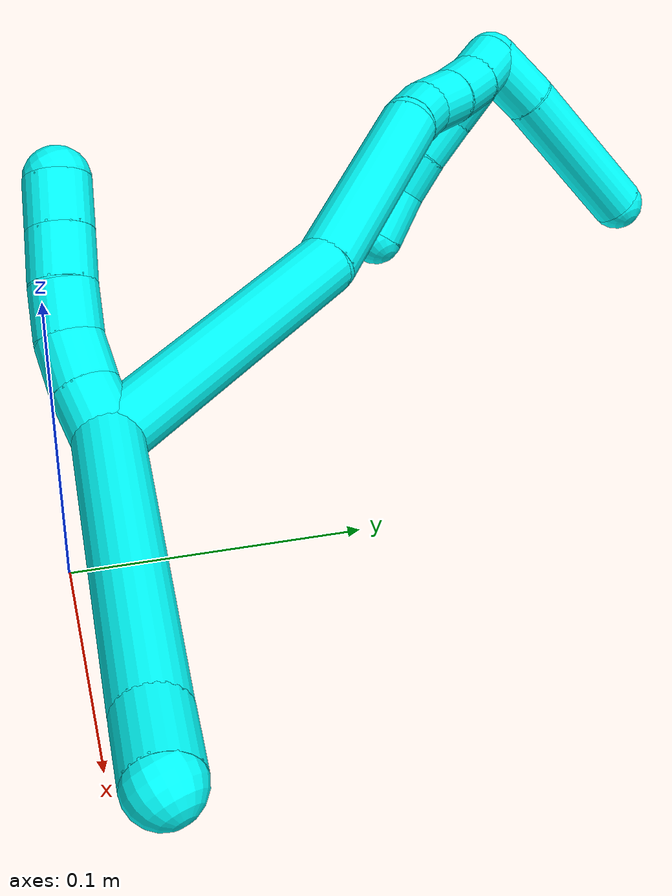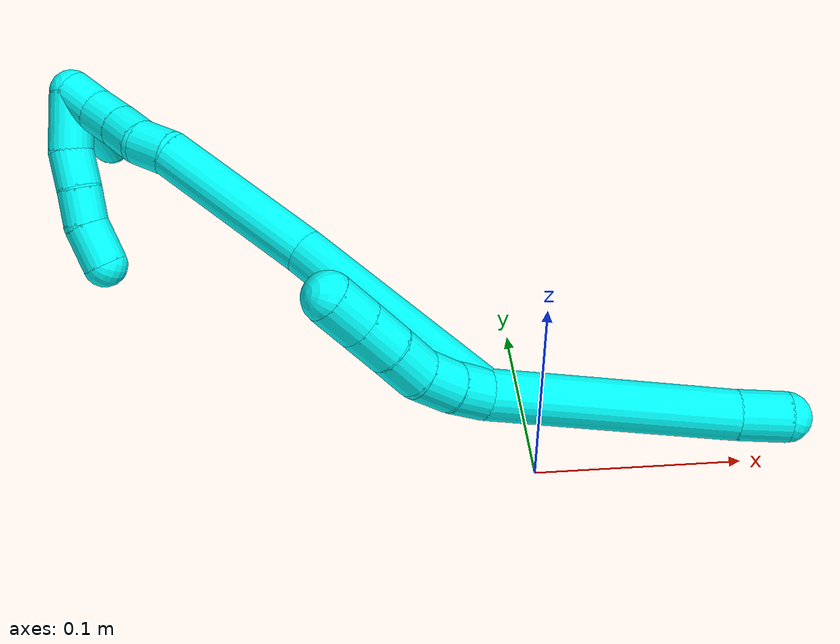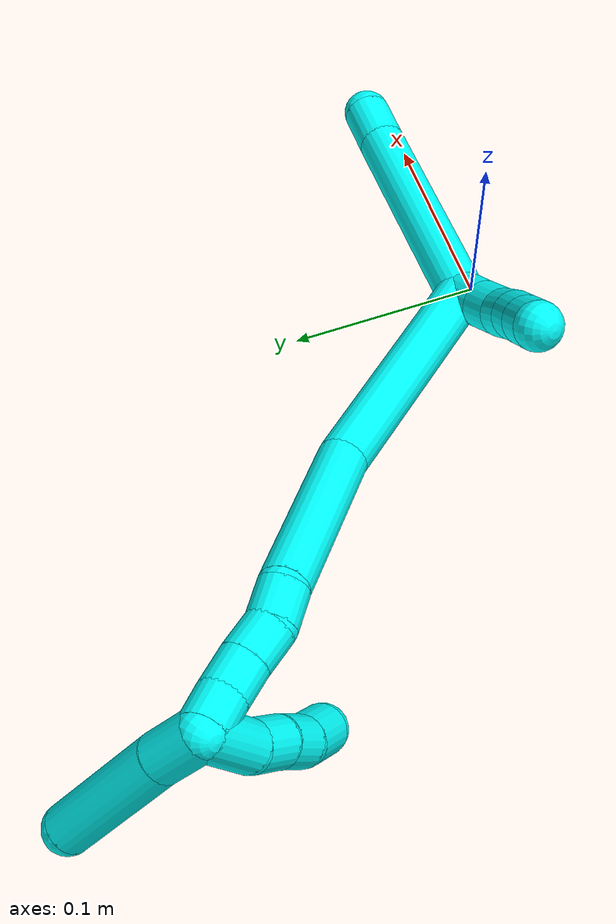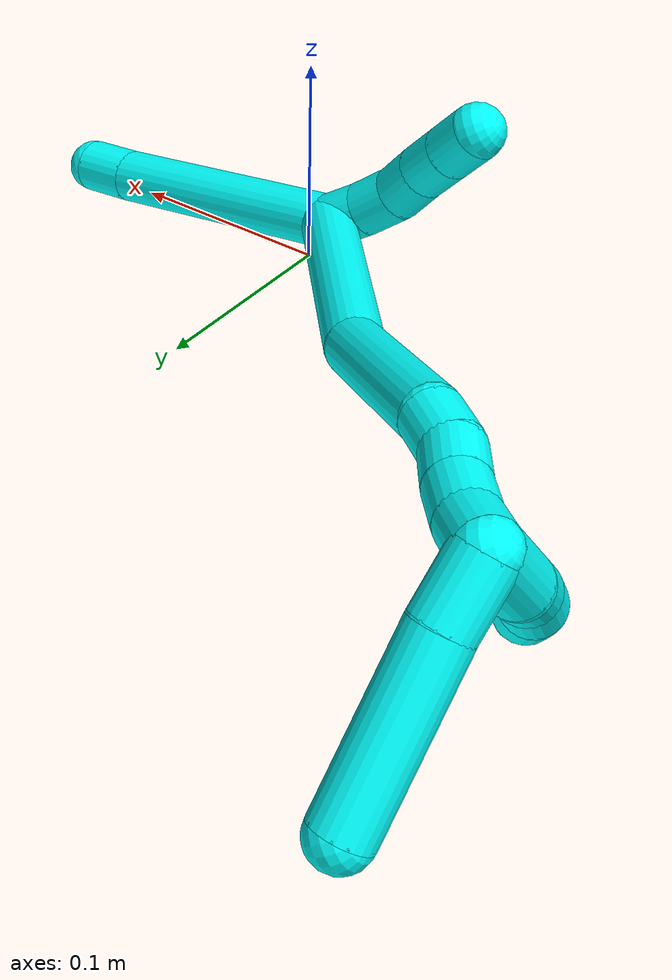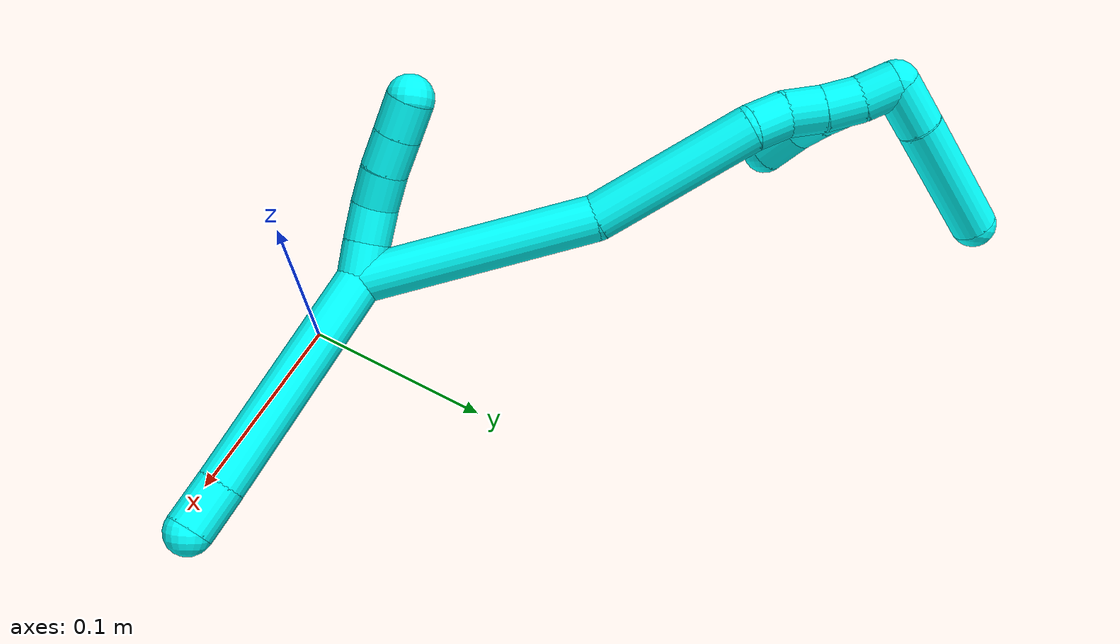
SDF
<sdf version="1.7">
 <world name="default">
  <model name="3">
   <static>0</static>
   <link name="3">
    <collision name="collision-cylinder-e_1_2_8">
     <pose>0.024641 0.022228 -0.052436 -2.74065 0.408346 -1.58961</pose>
     <geometry><cylinder><radius>0.0125</radius><length>0.124109</length></cylinder></geometry>
     <surface>
      <friction><ode><mu>1.16</mu><mu2>1.16</mu2><slip1>0</slip1><slip2>0</slip2></ode></friction>
      <contact><ode><kp>1e+06</kp><kd>1</kd><max_vel>0</max_vel><min_depth>0.001</min_depth></ode></contact>
     </surface>
    </collision>
    <visual name="visual-cylinder-e_1_2_8">
     <pose>0.024641 0.022228 -0.052436 -2.74065 0.408346 -1.58961</pose>
     <geometry><cylinder><radius>0.0125</radius><length>0.124109</length></cylinder></geometry>
     <material><ambient>0.003922 1 0.996078 1</ambient></material>
    </visual>
    <collision name="collision-cylinder-e_2_8_6">
     <pose>0.0544 0.049663 -0.115561 -2.6883 0.40642 -1.45844</pose>
     <geometry><cylinder><radius>0.0125</radius><length>0.025891</length></cylinder></geometry>
     <surface>
      <friction><ode><mu>1.16</mu><mu2>1.16</mu2><slip1>0</slip1><slip2>0</slip2></ode></friction>
      <contact><ode><kp>1e+06</kp><kd>1</kd><max_vel>0</max_vel><min_depth>0.001</min_depth></ode></contact>
     </surface>
    </collision>
    <visual name="visual-cylinder-e_2_8_6">
     <pose>0.0544 0.049663 -0.115561 -2.6883 0.40642 -1.45844</pose>
     <geometry><cylinder><radius>0.0125</radius><length>0.025891</length></cylinder></geometry>
     <material><ambient>0.003922 1 0.996078 1</ambient></material>
    </visual>
    <collision name="collision-cylinder-e_1_2_9">
     <pose>-0.000882 -0.00026 0.009958 0.026134 -0.088268 -0.001154</pose>
     <geometry><cylinder><radius>0.0125</radius><length>0.02</length></cylinder></geometry>
     <surface>
      <friction><ode><mu>1.16</mu><mu2>1.16</mu2><slip1>0</slip1><slip2>0</slip2></ode></friction>
      <contact><ode><kp>1e+06</kp><kd>1</kd><max_vel>0</max_vel><min_depth>0.001</min_depth></ode></contact>
     </surface>
    </collision>
    <visual name="visual-cylinder-e_1_2_9">
     <pose>-0.000882 -0.00026 0.009958 0.026134 -0.088268 -0.001154</pose>
     <geometry><cylinder><radius>0.0125</radius><length>0.02</length></cylinder></geometry>
     <material><ambient>0.003922 1 0.996078 1</ambient></material>
    </visual>
    <collision name="collision-cylinder-e_2_9_10">
     <pose>-0.003321 0.000389 0.029751 -0.092222 -0.156456 0.007234</pose>
     <geometry><cylinder><radius>0.0125</radius><length>0.02</length></cylinder></geometry>
     <surface>
      <friction><ode><mu>1.16</mu><mu2>1.16</mu2><slip1>0</slip1><slip2>0</slip2></ode></friction>
      <contact><ode><kp>1e+06</kp><kd>1</kd><max_vel>0</max_vel><min_depth>0.001</min_depth></ode></contact>
     </surface>
    </collision>
    <visual name="visual-cylinder-e_2_9_10">
     <pose>-0.003321 0.000389 0.029751 -0.092222 -0.156456 0.007234</pose>
     <geometry><cylinder><radius>0.0125</radius><length>0.02</length></cylinder></geometry>
     <material><ambient>0.003922 1 0.996078 1</ambient></material>
    </visual>
    <collision name="collision-cylinder-e_3_10_11">
     <pose>-0.007463 0.004549 0.048684 -0.343183 -0.261288 0.045532</pose>
     <geometry><cylinder><radius>0.0125</radius><length>0.02</length></cylinder></geometry>
     <surface>
      <friction><ode><mu>1.16</mu><mu2>1.16</mu2><slip1>0</slip1><slip2>0</slip2></ode></friction>
      <contact><ode><kp>1e+06</kp><kd>1</kd><max_vel>0</max_vel><min_depth>0.001</min_depth></ode></contact>
     </surface>
    </collision>
    <visual name="visual-cylinder-e_3_10_11">
     <pose>-0.007463 0.004549 0.048684 -0.343183 -0.261288 0.045532</pose>
     <geometry><cylinder><radius>0.0125</radius><length>0.02</length></cylinder></geometry>
     <material><ambient>0.003922 1 0.996078 1</ambient></material>
    </visual>
    <collision name="collision-cylinder-e_4_11_12">
     <pose>-0.013344 0.01072 0.066759 -0.31445 -0.336052 0.05377</pose>
     <geometry><cylinder><radius>0.0125</radius><length>0.02</length></cylinder></geometry>
     <surface>
      <friction><ode><mu>1.16</mu><mu2>1.16</mu2><slip1>0</slip1><slip2>0</slip2></ode></friction>
      <contact><ode><kp>1e+06</kp><kd>1</kd><max_vel>0</max_vel><min_depth>0.001</min_depth></ode></contact>
     </surface>
    </collision>
    <visual name="visual-cylinder-e_4_11_12">
     <pose>-0.013344 0.01072 0.066759 -0.31445 -0.336052 0.05377</pose>
     <geometry><cylinder><radius>0.0125</radius><length>0.02</length></cylinder></geometry>
     <material><ambient>0.003922 1 0.996078 1</ambient></material>
    </visual>
    <collision name="collision-cylinder-e_5_12_5">
     <pose>-0.019885 0.016545 0.084739 -0.312133 -0.33033 0.052442</pose>
     <geometry><cylinder><radius>0.0125</radius><length>0.02</length></cylinder></geometry>
     <surface>
      <friction><ode><mu>1.16</mu><mu2>1.16</mu2><slip1>0</slip1><slip2>0</slip2></ode></friction>
      <contact><ode><kp>1e+06</kp><kd>1</kd><max_vel>0</max_vel><min_depth>0.001</min_depth></ode></contact>
     </surface>
    </collision>
    <visual name="visual-cylinder-e_5_12_5">
     <pose>-0.019885 0.016545 0.084739 -0.312133 -0.33033 0.052442</pose>
     <geometry><cylinder><radius>0.0125</radius><length>0.02</length></cylinder></geometry>
     <material><ambient>0.003922 1 0.996078 1</ambient></material>
    </visual>
    <collision name="collision-cylinder-e_1_2_13">
     <pose>-0.059723 -0.003879 0.02138 0.179481 -1.22185 -0.125862</pose>
     <geometry><cylinder><radius>0.0125</radius><length>0.127107</length></cylinder></geometry>
     <surface>
      <friction><ode><mu>1.16</mu><mu2>1.16</mu2><slip1>0</slip1><slip2>0</slip2></ode></friction>
      <contact><ode><kp>1e+06</kp><kd>1</kd><max_vel>0</max_vel><min_depth>0.001</min_depth></ode></contact>
     </surface>
    </collision>
    <visual name="visual-cylinder-e_1_2_13">
     <pose>-0.059723 -0.003879 0.02138 0.179481 -1.22185 -0.125862</pose>
     <geometry><cylinder><radius>0.0125</radius><length>0.127107</length></cylinder></geometry>
     <material><ambient>0.003922 1 0.996078 1</ambient></material>
    </visual>
    <collision name="collision-cylinder-e_2_13_14">
     <pose>-0.157323 -0.007483 0.069036 -0.010458 -0.964272 0.005473</pose>
     <geometry><cylinder><radius>0.0125</radius><length>0.092198</length></cylinder></geometry>
     <surface>
      <friction><ode><mu>1.16</mu><mu2>1.16</mu2><slip1>0</slip1><slip2>0</slip2></ode></friction>
      <contact><ode><kp>1e+06</kp><kd>1</kd><max_vel>0</max_vel><min_depth>0.001</min_depth></ode></contact>
     </surface>
    </collision>
    <visual name="visual-cylinder-e_2_13_14">
     <pose>-0.157323 -0.007483 0.069036 -0.010458 -0.964272 0.005473</pose>
     <geometry><cylinder><radius>0.0125</radius><length>0.092198</length></cylinder></geometry>
     <material><ambient>0.003922 1 0.996078 1</ambient></material>
    </visual>
    <collision name="collision-cylinder-e_3_14_15">
     <pose>-0.203715 -0.009966 0.099929 0.538332 -1.00757 -0.301811</pose>
     <geometry><cylinder><radius>0.0125</radius><length>0.020143</length></cylinder></geometry>
     <surface>
      <friction><ode><mu>1.16</mu><mu2>1.16</mu2><slip1>0</slip1><slip2>0</slip2></ode></friction>
      <contact><ode><kp>1e+06</kp><kd>1</kd><max_vel>0</max_vel><min_depth>0.001</min_depth></ode></contact>
     </surface>
    </collision>
    <visual name="visual-cylinder-e_3_14_15">
     <pose>-0.203715 -0.009966 0.099929 0.538332 -1.00757 -0.301811</pose>
     <geometry><cylinder><radius>0.0125</radius><length>0.020143</length></cylinder></geometry>
     <material><ambient>0.003922 1 0.996078 1</ambient></material>
    </visual>
    <collision name="collision-cylinder-e_4_15_16">
     <pose>-0.221894 -0.01401 0.106808 0.517296 -1.30766 -0.400046</pose>
     <geometry><cylinder><radius>0.0125</radius><length>0.020013</length></cylinder></geometry>
     <surface>
      <friction><ode><mu>1.16</mu><mu2>1.16</mu2><slip1>0</slip1><slip2>0</slip2></ode></friction>
      <contact><ode><kp>1e+06</kp><kd>1</kd><max_vel>0</max_vel><min_depth>0.001</min_depth></ode></contact>
     </surface>
    </collision>
    <visual name="visual-cylinder-e_4_15_16">
     <pose>-0.221894 -0.01401 0.106808 0.517296 -1.30766 -0.400046</pose>
     <geometry><cylinder><radius>0.0125</radius><length>0.020013</length></cylinder></geometry>
     <material><ambient>0.003922 1 0.996078 1</ambient></material>
    </visual>
    <collision name="collision-cylinder-e_5_16_17">
     <pose>-0.24099 -0.016512 0.112466 0.343705 -1.20563 -0.237794</pose>
     <geometry><cylinder><radius>0.0125</radius><length>0.020201</length></cylinder></geometry>
     <surface>
      <friction><ode><mu>1.16</mu><mu2>1.16</mu2><slip1>0</slip1><slip2>0</slip2></ode></friction>
      <contact><ode><kp>1e+06</kp><kd>1</kd><max_vel>0</max_vel><min_depth>0.001</min_depth></ode></contact>
     </surface>
    </collision>
    <visual name="visual-cylinder-e_5_16_17">
     <pose>-0.24099 -0.016512 0.112466 0.343705 -1.20563 -0.237794</pose>
     <geometry><cylinder><radius>0.0125</radius><length>0.020201</length></cylinder></geometry>
     <material><ambient>0.003922 1 0.996078 1</ambient></material>
    </visual>
    <collision name="collision-cylinder-e_6_17_1">
     <pose>-0.259361 -0.017985 0.120709 0.05289 -1.07325 -0.031467</pose>
     <geometry><cylinder><radius>0.0125</radius><length>0.020338</length></cylinder></geometry>
     <surface>
      <friction><ode><mu>1.16</mu><mu2>1.16</mu2><slip1>0</slip1><slip2>0</slip2></ode></friction>
      <contact><ode><kp>1e+06</kp><kd>1</kd><max_vel>0</max_vel><min_depth>0.001</min_depth></ode></contact>
     </surface>
    </collision>
    <visual name="visual-cylinder-e_6_17_1">
     <pose>-0.259361 -0.017985 0.120709 0.05289 -1.07325 -0.031467</pose>
     <geometry><cylinder><radius>0.0125</radius><length>0.020338</length></cylinder></geometry>
     <material><ambient>0.003922 1 0.996078 1</ambient></material>
    </visual>
    <collision name="collision-cylinder-e_1_1_18">
     <pose>-0.276337 -0.024198 0.115844 2.59135 -0.614567 -1.68759</pose>
     <geometry><cylinder><radius>0.0125</radius><length>0.027888</length></cylinder></geometry>
     <surface>
      <friction><ode><mu>1.16</mu><mu2>1.16</mu2><slip1>0</slip1><slip2>0</slip2></ode></friction>
      <contact><ode><kp>1e+06</kp><kd>1</kd><max_vel>0</max_vel><min_depth>0.001</min_depth></ode></contact>
     </surface>
    </collision>
    <visual name="visual-cylinder-e_1_1_18">
     <pose>-0.276337 -0.024198 0.115844 2.59135 -0.614567 -1.68759</pose>
     <geometry><cylinder><radius>0.0125</radius><length>0.027888</length></cylinder></geometry>
     <material><ambient>0.003922 1 0.996078 1</ambient></material>
    </visual>
    <collision name="collision-cylinder-e_2_18_4">
     <pose>-0.304652 -0.048101 0.082323 2.49571 -0.597175 -1.48721</pose>
     <geometry><cylinder><radius>0.0125</radius><length>0.072112</length></cylinder></geometry>
     <surface>
      <friction><ode><mu>1.16</mu><mu2>1.16</mu2><slip1>0</slip1><slip2>0</slip2></ode></friction>
      <contact><ode><kp>1e+06</kp><kd>1</kd><max_vel>0</max_vel><min_depth>0.001</min_depth></ode></contact>
     </surface>
    </collision>
    <visual name="visual-cylinder-e_2_18_4">
     <pose>-0.304652 -0.048101 0.082323 2.49571 -0.597175 -1.48721</pose>
     <geometry><cylinder><radius>0.0125</radius><length>0.072112</length></cylinder></geometry>
     <material><ambient>0.003922 1 0.996078 1</ambient></material>
    </visual>
    <collision name="collision-cylinder-e_1_1_19">
     <pose>-0.25956 -0.03199 0.12232 1.80191 0.553942 0.689232</pose>
     <geometry><cylinder><radius>0.0125</radius><length>0.033215</length></cylinder></geometry>
     <surface>
      <friction><ode><mu>1.16</mu><mu2>1.16</mu2><slip1>0</slip1><slip2>0</slip2></ode></friction>
      <contact><ode><kp>1e+06</kp><kd>1</kd><max_vel>0</max_vel><min_depth>0.001</min_depth></ode></contact>
     </surface>
    </collision>
    <visual name="visual-cylinder-e_1_1_19">
     <pose>-0.25956 -0.03199 0.12232 1.80191 0.553942 0.689232</pose>
     <geometry><cylinder><radius>0.0125</radius><length>0.033215</length></cylinder></geometry>
     <material><ambient>0.003922 1 0.996078 1</ambient></material>
    </visual>
    <collision name="collision-cylinder-e_2_19_20">
     <pose>-0.243347 -0.052751 0.11556 2.03651 0.761187 1.15117</pose>
     <geometry><cylinder><radius>0.0125</radius><length>0.021681</length></cylinder></geometry>
     <surface>
      <friction><ode><mu>1.16</mu><mu2>1.16</mu2><slip1>0</slip1><slip2>0</slip2></ode></friction>
      <contact><ode><kp>1e+06</kp><kd>1</kd><max_vel>0</max_vel><min_depth>0.001</min_depth></ode></contact>
     </surface>
    </collision>
    <visual name="visual-cylinder-e_2_19_20">
     <pose>-0.243347 -0.052751 0.11556 2.03651 0.761187 1.15117</pose>
     <geometry><cylinder><radius>0.0125</radius><length>0.021681</length></cylinder></geometry>
     <material><ambient>0.003922 1 0.996078 1</ambient></material>
    </visual>
    <collision name="collision-cylinder-e_3_20_21">
     <pose>-0.229823 -0.067044 0.108476 2.02557 0.640985 0.977513</pose>
     <geometry><cylinder><radius>0.0125</radius><length>0.020223</length></cylinder></geometry>
     <surface>
      <friction><ode><mu>1.16</mu><mu2>1.16</mu2><slip1>0</slip1><slip2>0</slip2></ode></friction>
      <contact><ode><kp>1e+06</kp><kd>1</kd><max_vel>0</max_vel><min_depth>0.001</min_depth></ode></contact>
     </surface>
    </collision>
    <visual name="visual-cylinder-e_3_20_21">
     <pose>-0.229823 -0.067044 0.108476 2.02557 0.640985 0.977513</pose>
     <geometry><cylinder><radius>0.0125</radius><length>0.020223</length></cylinder></geometry>
     <material><ambient>0.003922 1 0.996078 1</ambient></material>
    </visual>
    <collision name="collision-cylinder-e_4_21_3">
     <pose>-0.215652 -0.081111 0.09838 2.3374 0.71165 1.43642</pose>
     <geometry><cylinder><radius>0.0125</radius><length>0.024881</length></cylinder></geometry>
     <surface>
      <friction><ode><mu>1.16</mu><mu2>1.16</mu2><slip1>0</slip1><slip2>0</slip2></ode></friction>
      <contact><ode><kp>1e+06</kp><kd>1</kd><max_vel>0</max_vel><min_depth>0.001</min_depth></ode></contact>
     </surface>
    </collision>
    <visual name="visual-cylinder-e_4_21_3">
     <pose>-0.215652 -0.081111 0.09838 2.3374 0.71165 1.43642</pose>
     <geometry><cylinder><radius>0.0125</radius><length>0.024881</length></cylinder></geometry>
     <material><ambient>0.003922 1 0.996078 1</ambient></material>
    </visual>
    <collision name="collision-sphere-3">
     <pose>-0.207527 -0.087896 0.091845 0 -0 0</pose>
     <geometry><sphere><radius>0.0125</radius></sphere></geometry>
     <surface>
      <friction><ode><mu>1.16</mu><mu2>1.16</mu2><slip1>0</slip1><slip2>0</slip2></ode></friction>
      <contact><ode><kp>1e+06</kp><kd>1</kd><max_vel>0</max_vel><min_depth>0.001</min_depth></ode></contact>
     </surface>
    </collision>
    <visual name="visual-sphere-3">
     <pose>-0.207527 -0.087896 0.091845 0 -0 0</pose>
     <geometry><sphere><radius>0.0125</radius></sphere></geometry>
     <material><ambient>0.003922 1 0.996078 1</ambient></material>
    </visual>
    <collision name="collision-sphere-21">
     <pose>-0.223776 -0.074325 0.104916 0 -0 0</pose>
     <geometry><sphere><radius>0.0125</radius></sphere></geometry>
     <surface>
      <friction><ode><mu>1.16</mu><mu2>1.16</mu2><slip1>0</slip1><slip2>0</slip2></ode></friction>
      <contact><ode><kp>1e+06</kp><kd>1</kd><max_vel>0</max_vel><min_depth>0.001</min_depth></ode></contact>
     </surface>
    </collision>
    <visual name="visual-sphere-21">
     <pose>-0.223776 -0.074325 0.104916 0 -0 0</pose>
     <geometry><sphere><radius>0.0125</radius></sphere></geometry>
     <material><ambient>0.003922 1 0.996078 1</ambient></material>
    </visual>
    <collision name="collision-sphere-20">
     <pose>-0.235869 -0.059764 0.112035 0 -0 0</pose>
     <geometry><sphere><radius>0.0125</radius></sphere></geometry>
     <surface>
      <friction><ode><mu>1.16</mu><mu2>1.16</mu2><slip1>0</slip1><slip2>0</slip2></ode></friction>
      <contact><ode><kp>1e+06</kp><kd>1</kd><max_vel>0</max_vel><min_depth>0.001</min_depth></ode></contact>
     </surface>
    </collision>
    <visual name="visual-sphere-20">
     <pose>-0.235869 -0.059764 0.112035 0 -0 0</pose>
     <geometry><sphere><radius>0.0125</radius></sphere></geometry>
     <material><ambient>0.003922 1 0.996078 1</ambient></material>
    </visual>
    <collision name="collision-sphere-19">
     <pose>-0.250824 -0.045738 0.119084 0 -0 0</pose>
     <geometry><sphere><radius>0.0125</radius></sphere></geometry>
     <surface>
      <friction><ode><mu>1.16</mu><mu2>1.16</mu2><slip1>0</slip1><slip2>0</slip2></ode></friction>
      <contact><ode><kp>1e+06</kp><kd>1</kd><max_vel>0</max_vel><min_depth>0.001</min_depth></ode></contact>
     </surface>
    </collision>
    <visual name="visual-sphere-19">
     <pose>-0.250824 -0.045738 0.119084 0 -0 0</pose>
     <geometry><sphere><radius>0.0125</radius></sphere></geometry>
     <material><ambient>0.003922 1 0.996078 1</ambient></material>
    </visual>
    <collision name="collision-sphere-11">
     <pose>-0.010046 0.0078 0.057782 0 -0 0</pose>
     <geometry><sphere><radius>0.0125</radius></sphere></geometry>
     <surface>
      <friction><ode><mu>1.16</mu><mu2>1.16</mu2><slip1>0</slip1><slip2>0</slip2></ode></friction>
      <contact><ode><kp>1e+06</kp><kd>1</kd><max_vel>0</max_vel><min_depth>0.001</min_depth></ode></contact>
     </surface>
    </collision>
    <visual name="visual-sphere-11">
     <pose>-0.010046 0.0078 0.057782 0 -0 0</pose>
     <geometry><sphere><radius>0.0125</radius></sphere></geometry>
     <material><ambient>0.003922 1 0.996078 1</ambient></material>
    </visual>
    <collision name="collision-sphere-10">
     <pose>-0.004879 0.001299 0.039587 0 -0 0</pose>
     <geometry><sphere><radius>0.0125</radius></sphere></geometry>
     <surface>
      <friction><ode><mu>1.16</mu><mu2>1.16</mu2><slip1>0</slip1><slip2>0</slip2></ode></friction>
      <contact><ode><kp>1e+06</kp><kd>1</kd><max_vel>0</max_vel><min_depth>0.001</min_depth></ode></contact>
     </surface>
    </collision>
    <visual name="visual-sphere-10">
     <pose>-0.004879 0.001299 0.039587 0 -0 0</pose>
     <geometry><sphere><radius>0.0125</radius></sphere></geometry>
     <material><ambient>0.003922 1 0.996078 1</ambient></material>
    </visual>
    <collision name="collision-sphere-6">
     <pose>0.059518 0.05487 -0.126252 0 -0 0</pose>
     <geometry><sphere><radius>0.0125</radius></sphere></geometry>
     <surface>
      <friction><ode><mu>1.16</mu><mu2>1.16</mu2><slip1>0</slip1><slip2>0</slip2></ode></friction>
      <contact><ode><kp>1e+06</kp><kd>1</kd><max_vel>0</max_vel><min_depth>0.001</min_depth></ode></contact>
     </surface>
    </collision>
    <visual name="visual-sphere-6">
     <pose>0.059518 0.05487 -0.126252 0 -0 0</pose>
     <geometry><sphere><radius>0.0125</radius></sphere></geometry>
     <material><ambient>0.003922 1 0.996078 1</ambient></material>
    </visual>
    <collision name="collision-sphere-9">
     <pose>-0.001763 -0.000521 0.019915 0 -0 0</pose>
     <geometry><sphere><radius>0.0125</radius></sphere></geometry>
     <surface>
      <friction><ode><mu>1.16</mu><mu2>1.16</mu2><slip1>0</slip1><slip2>0</slip2></ode></friction>
      <contact><ode><kp>1e+06</kp><kd>1</kd><max_vel>0</max_vel><min_depth>0.001</min_depth></ode></contact>
     </surface>
    </collision>
    <visual name="visual-sphere-9">
     <pose>-0.001763 -0.000521 0.019915 0 -0 0</pose>
     <geometry><sphere><radius>0.0125</radius></sphere></geometry>
     <material><ambient>0.003922 1 0.996078 1</ambient></material>
    </visual>
    <collision name="collision-sphere-2">
     <geometry><sphere><radius>0.0125</radius></sphere></geometry>
     <surface>
      <friction><ode><mu>1.16</mu><mu2>1.16</mu2><slip1>0</slip1><slip2>0</slip2></ode></friction>
      <contact><ode><kp>1e+06</kp><kd>1</kd><max_vel>0</max_vel><min_depth>0.001</min_depth></ode></contact>
     </surface>
    </collision>
    <visual name="visual-sphere-2">
     <geometry><sphere><radius>0.0125</radius></sphere></geometry>
     <material><ambient>0.003922 1 0.996078 1</ambient></material>
    </visual>
    <collision name="collision-sphere-8">
     <pose>0.049283 0.044455 -0.104871 0 -0 0</pose>
     <geometry><sphere><radius>0.0125</radius></sphere></geometry>
     <surface>
      <friction><ode><mu>1.16</mu><mu2>1.16</mu2><slip1>0</slip1><slip2>0</slip2></ode></friction>
      <contact><ode><kp>1e+06</kp><kd>1</kd><max_vel>0</max_vel><min_depth>0.001</min_depth></ode></contact>
     </surface>
    </collision>
    <visual name="visual-sphere-8">
     <pose>0.049283 0.044455 -0.104871 0 -0 0</pose>
     <geometry><sphere><radius>0.0125</radius></sphere></geometry>
     <material><ambient>0.003922 1 0.996078 1</ambient></material>
    </visual>
    <collision name="collision-sphere-12">
     <pose>-0.016641 0.01364 0.075737 0 -0 0</pose>
     <geometry><sphere><radius>0.0125</radius></sphere></geometry>
     <surface>
      <friction><ode><mu>1.16</mu><mu2>1.16</mu2><slip1>0</slip1><slip2>0</slip2></ode></friction>
      <contact><ode><kp>1e+06</kp><kd>1</kd><max_vel>0</max_vel><min_depth>0.001</min_depth></ode></contact>
     </surface>
    </collision>
    <visual name="visual-sphere-12">
     <pose>-0.016641 0.01364 0.075737 0 -0 0</pose>
     <geometry><sphere><radius>0.0125</radius></sphere></geometry>
     <material><ambient>0.003922 1 0.996078 1</ambient></material>
    </visual>
    <collision name="collision-sphere-5">
     <pose>-0.023128 0.01945 0.093742 0 -0 0</pose>
     <geometry><sphere><radius>0.0125</radius></sphere></geometry>
     <surface>
      <friction><ode><mu>1.16</mu><mu2>1.16</mu2><slip1>0</slip1><slip2>0</slip2></ode></friction>
      <contact><ode><kp>1e+06</kp><kd>1</kd><max_vel>0</max_vel><min_depth>0.001</min_depth></ode></contact>
     </surface>
    </collision>
    <visual name="visual-sphere-5">
     <pose>-0.023128 0.01945 0.093742 0 -0 0</pose>
     <geometry><sphere><radius>0.0125</radius></sphere></geometry>
     <material><ambient>0.003922 1 0.996078 1</ambient></material>
    </visual>
    <collision name="collision-sphere-13">
     <pose>-0.119447 -0.007758 0.042761 0 -0 0</pose>
     <geometry><sphere><radius>0.0125</radius></sphere></geometry>
     <surface>
      <friction><ode><mu>1.16</mu><mu2>1.16</mu2><slip1>0</slip1><slip2>0</slip2></ode></friction>
      <contact><ode><kp>1e+06</kp><kd>1</kd><max_vel>0</max_vel><min_depth>0.001</min_depth></ode></contact>
     </surface>
    </collision>
    <visual name="visual-sphere-13">
     <pose>-0.119447 -0.007758 0.042761 0 -0 0</pose>
     <geometry><sphere><radius>0.0125</radius></sphere></geometry>
     <material><ambient>0.003922 1 0.996078 1</ambient></material>
    </visual>
    <collision name="collision-sphere-14">
     <pose>-0.1952 -0.007209 0.095312 0 -0 0</pose>
     <geometry><sphere><radius>0.0125</radius></sphere></geometry>
     <surface>
      <friction><ode><mu>1.16</mu><mu2>1.16</mu2><slip1>0</slip1><slip2>0</slip2></ode></friction>
      <contact><ode><kp>1e+06</kp><kd>1</kd><max_vel>0</max_vel><min_depth>0.001</min_depth></ode></contact>
     </surface>
    </collision>
    <visual name="visual-sphere-14">
     <pose>-0.1952 -0.007209 0.095312 0 -0 0</pose>
     <geometry><sphere><radius>0.0125</radius></sphere></geometry>
     <material><ambient>0.003922 1 0.996078 1</ambient></material>
    </visual>
    <collision name="collision-sphere-15">
     <pose>-0.212231 -0.012723 0.104546 0 -0 0</pose>
     <geometry><sphere><radius>0.0125</radius></sphere></geometry>
     <surface>
      <friction><ode><mu>1.16</mu><mu2>1.16</mu2><slip1>0</slip1><slip2>0</slip2></ode></friction>
      <contact><ode><kp>1e+06</kp><kd>1</kd><max_vel>0</max_vel><min_depth>0.001</min_depth></ode></contact>
     </surface>
    </collision>
    <visual name="visual-sphere-15">
     <pose>-0.212231 -0.012723 0.104546 0 -0 0</pose>
     <geometry><sphere><radius>0.0125</radius></sphere></geometry>
     <material><ambient>0.003922 1 0.996078 1</ambient></material>
    </visual>
    <collision name="collision-sphere-16">
     <pose>-0.231556 -0.015297 0.10907 0 -0 0</pose>
     <geometry><sphere><radius>0.0125</radius></sphere></geometry>
     <surface>
      <friction><ode><mu>1.16</mu><mu2>1.16</mu2><slip1>0</slip1><slip2>0</slip2></ode></friction>
      <contact><ode><kp>1e+06</kp><kd>1</kd><max_vel>0</max_vel><min_depth>0.001</min_depth></ode></contact>
     </surface>
    </collision>
    <visual name="visual-sphere-16">
     <pose>-0.231556 -0.015297 0.10907 0 -0 0</pose>
     <geometry><sphere><radius>0.0125</radius></sphere></geometry>
     <material><ambient>0.003922 1 0.996078 1</ambient></material>
    </visual>
    <collision name="collision-sphere-17">
     <pose>-0.250425 -0.017728 0.115862 0 -0 0</pose>
     <geometry><sphere><radius>0.0125</radius></sphere></geometry>
     <surface>
      <friction><ode><mu>1.16</mu><mu2>1.16</mu2><slip1>0</slip1><slip2>0</slip2></ode></friction>
      <contact><ode><kp>1e+06</kp><kd>1</kd><max_vel>0</max_vel><min_depth>0.001</min_depth></ode></contact>
     </surface>
    </collision>
    <visual name="visual-sphere-17">
     <pose>-0.250425 -0.017728 0.115862 0 -0 0</pose>
     <geometry><sphere><radius>0.0125</radius></sphere></geometry>
     <material><ambient>0.003922 1 0.996078 1</ambient></material>
    </visual>
    <collision name="collision-sphere-1">
     <pose>-0.268297 -0.018241 0.125555 0 -0 0</pose>
     <geometry><sphere><radius>0.0125</radius></sphere></geometry>
     <surface>
      <friction><ode><mu>1.16</mu><mu2>1.16</mu2><slip1>0</slip1><slip2>0</slip2></ode></friction>
      <contact><ode><kp>1e+06</kp><kd>1</kd><max_vel>0</max_vel><min_depth>0.001</min_depth></ode></contact>
     </surface>
    </collision>
    <visual name="visual-sphere-1">
     <pose>-0.268297 -0.018241 0.125555 0 -0 0</pose>
     <geometry><sphere><radius>0.0125</radius></sphere></geometry>
     <material><ambient>0.003922 1 0.996078 1</ambient></material>
    </visual>
    <collision name="collision-sphere-18">
     <pose>-0.284377 -0.030155 0.106133 0 -0 0</pose>
     <geometry><sphere><radius>0.0125</radius></sphere></geometry>
     <surface>
      <friction><ode><mu>1.16</mu><mu2>1.16</mu2><slip1>0</slip1><slip2>0</slip2></ode></friction>
      <contact><ode><kp>1e+06</kp><kd>1</kd><max_vel>0</max_vel><min_depth>0.001</min_depth></ode></contact>
     </surface>
    </collision>
    <visual name="visual-sphere-18">
     <pose>-0.284377 -0.030155 0.106133 0 -0 0</pose>
     <geometry><sphere><radius>0.0125</radius></sphere></geometry>
     <material><ambient>0.003922 1 0.996078 1</ambient></material>
    </visual>
    <collision name="collision-sphere-4">
     <pose>-0.324926 -0.066047 0.058513 0 -0 0</pose>
     <geometry><sphere><radius>0.0125</radius></sphere></geometry>
     <surface>
      <friction><ode><mu>1.16</mu><mu2>1.16</mu2><slip1>0</slip1><slip2>0</slip2></ode></friction>
      <contact><ode><kp>1e+06</kp><kd>1</kd><max_vel>0</max_vel><min_depth>0.001</min_depth></ode></contact>
     </surface>
    </collision>
    <visual name="visual-sphere-4">
     <pose>-0.324926 -0.066047 0.058513 0 -0 0</pose>
     <geometry><sphere><radius>0.0125</radius></sphere></geometry>
     <material><ambient>0.003922 1 0.996078 1</ambient></material>
    </visual>
    <inertial>
     <pose>-0.121068 -0.009872 0.044847 0 -0 0</pose>
     <mass>0.75</mass>
     <inertia>
      <ixx>-9.1e-05</ixx>
      <ixy>0</ixy>
      <ixz>0</ixz>
      <iyy>0.000109</iyy>
      <iyz>0</iyz>
      <izz>0.000152</izz>
     </inertia>
    </inertial>
   </link>
   <pose>-0.023592 0.01809 0.036064 1.00321 0.008899 -1.18656</pose>
  </model>
 </world>
</sdf>
